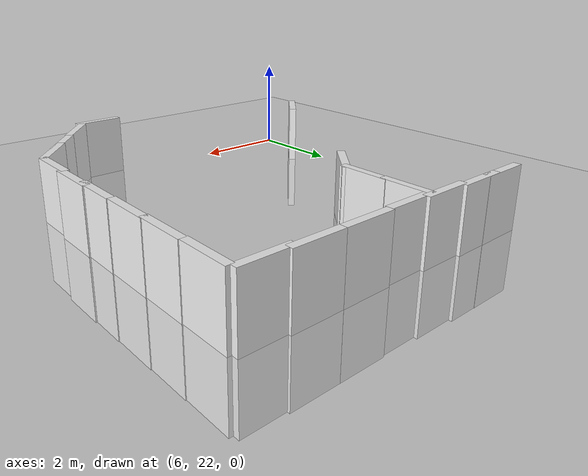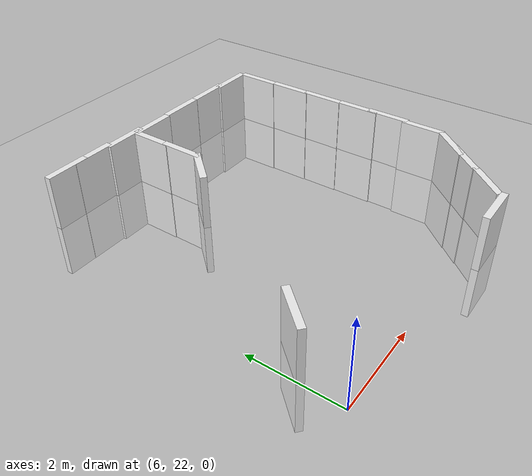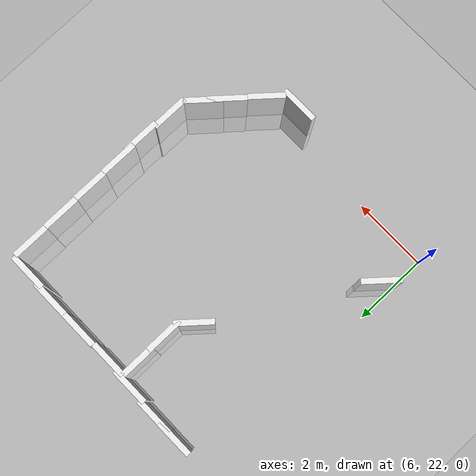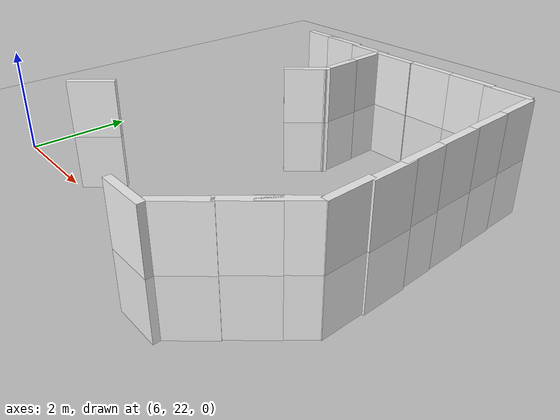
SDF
<sdf version="1.6">
 <world name="default">
  <model name="ground_plane">
   <static>1</static>
   <link name="link">
    <collision name="collision">
     <geometry><plane><normal>0 0 1</normal><size>100 100</size></plane></geometry>
     <surface><friction><ode><mu>100</mu><mu2>50</mu2></ode></friction></surface>
    </collision>
    <visual name="visual">
     <cast_shadows>0</cast_shadows>
     <geometry><plane><normal>0 0 1</normal><size>100 100</size></plane></geometry>
     <material>
      <script><uri>file://media/materials/scripts/gazebo.material</uri><name>Gazebo/Grey</name></script>
     </material>
    </visual>
   </link>
  </model>
  <model name="wall_right_13_clone_clone_9_clone_2_clone_0">
   <link name="Wall_10">
    <inertial>
     <mass>1</mass>
     <inertia><ixx>1</ixx><ixy>0</ixy><ixz>0</ixz><iyy>1</iyy><iyz>0</iyz><izz>1</izz></inertia>
    </inertial>
    <visual name="Wall_10_Visual_0">
     <geometry><box><size>1 0.15 2.5</size></box></geometry>
     <material>
      <script>
       <uri>model://wall/materials/scripts</uri>
       <uri>model://wall/materials/textures</uri>
       <name>wall_white</name>
      </script>
      <shader type="pixel"><normal_map>__default__</normal_map></shader>
      <ambient>1 1 1 1</ambient>
      <diffuse>1 1 1 1</diffuse>
      <specular>0 0 0 1</specular>
      <emissive>0 0 0 1</emissive>
     </material>
     <meta><layer>0</layer></meta>
    </visual>
    <collision name="Wall_10_Collision_0">
     <geometry><box><size>1 0.15 2.5</size></box></geometry>
     <surface>
      <friction>
       <ode><mu>1</mu><mu2>1</mu2><fdir1>0 0 0</fdir1><slip1>0</slip1><slip2>0</slip2></ode>
       <torsional>
        <coefficient>1</coefficient>
        <patch_radius>0</patch_radius>
        <surface_radius>0</surface_radius>
        <use_patch_radius>1</use_patch_radius>
        <ode><slip>0</slip></ode>
       </torsional>
      </friction>
      <bounce><restitution_coefficient>0</restitution_coefficient><threshold>1e+06</threshold></bounce>
      <contact>
       <collide_without_contact>0</collide_without_contact>
       <collide_without_contact_bitmask>1</collide_without_contact_bitmask>
       <collide_bitmask>1</collide_bitmask>
       <ode>
        <soft_cfm>0</soft_cfm>
        <soft_erp>0.2</soft_erp>
        <kp>1e+13</kp>
        <kd>1</kd>
        <max_vel>0.01</max_vel>
        <min_depth>0</min_depth>
       </ode>
       <bullet>
        <split_impulse>1</split_impulse>
        <split_impulse_penetration_threshold>-0.01</split_impulse_penetration_threshold>
        <soft_cfm>0</soft_cfm>
        <soft_erp>0.2</soft_erp>
        <kp>1e+13</kp>
        <kd>1</kd>
       </bullet>
      </contact>
     </surface>
    </collision>
   </link>
   <static>1</static>
   <pose>10.78 21.6301 0 0 -0 0</pose>
  </model>
  <model name="wall_left_07_clone_3_clone_3_clone_clone_11_clone">
   <link name="Wall_10">
    <inertial>
     <mass>1</mass>
     <inertia><ixx>1</ixx><ixy>0</ixy><ixz>0</ixz><iyy>1</iyy><iyz>0</iyz><izz>1</izz></inertia>
    </inertial>
    <visual name="Wall_10_Visual_0">
     <geometry><box><size>1 0.15 2.5</size></box></geometry>
     <material>
      <script>
       <uri>model://wall/materials/scripts</uri>
       <uri>model://wall/materials/textures</uri>
       <name>wall_white</name>
      </script>
      <shader type="pixel"><normal_map>__default__</normal_map></shader>
      <ambient>1 1 1 1</ambient>
      <diffuse>1 1 1 1</diffuse>
      <specular>0 0 0 1</specular>
      <emissive>0 0 0 1</emissive>
     </material>
     <meta><layer>0</layer></meta>
    </visual>
    <collision name="Wall_10_Collision_0">
     <geometry><box><size>1 0.15 2.5</size></box></geometry>
     <surface>
      <friction>
       <ode><mu>1</mu><mu2>1</mu2><fdir1>0 0 0</fdir1><slip1>0</slip1><slip2>0</slip2></ode>
       <torsional>
        <coefficient>1</coefficient>
        <patch_radius>0</patch_radius>
        <surface_radius>0</surface_radius>
        <use_patch_radius>1</use_patch_radius>
        <ode><slip>0</slip></ode>
       </torsional>
      </friction>
      <bounce><restitution_coefficient>0</restitution_coefficient><threshold>1e+06</threshold></bounce>
      <contact>
       <collide_without_contact>0</collide_without_contact>
       <collide_without_contact_bitmask>1</collide_without_contact_bitmask>
       <collide_bitmask>1</collide_bitmask>
       <ode>
        <soft_cfm>0</soft_cfm>
        <soft_erp>0.2</soft_erp>
        <kp>1e+13</kp>
        <kd>1</kd>
        <max_vel>0.01</max_vel>
        <min_depth>0</min_depth>
       </ode>
       <bullet>
        <split_impulse>1</split_impulse>
        <split_impulse_penetration_threshold>-0.01</split_impulse_penetration_threshold>
        <soft_cfm>0</soft_cfm>
        <soft_erp>0.2</soft_erp>
        <kp>1e+13</kp>
        <kd>1</kd>
       </bullet>
      </contact>
     </surface>
    </collision>
   </link>
   <static>1</static>
   <pose>11.5121 22.0724 0 0 -0 0.850469</pose>
  </model>
  <model name="wall_left_07_clone_3_clone_3_clone_clone_11_clone_0">
   <link name="Wall_10">
    <inertial>
     <mass>1</mass>
     <inertia><ixx>1</ixx><ixy>0</ixy><ixz>0</ixz><iyy>1</iyy><iyz>0</iyz><izz>1</izz></inertia>
    </inertial>
    <visual name="Wall_10_Visual_0">
     <geometry><box><size>1 0.15 2.5</size></box></geometry>
     <material>
      <script>
       <uri>model://wall/materials/scripts</uri>
       <uri>model://wall/materials/textures</uri>
       <name>wall_white</name>
      </script>
      <shader type="pixel"><normal_map>__default__</normal_map></shader>
      <ambient>1 1 1 1</ambient>
      <diffuse>1 1 1 1</diffuse>
      <specular>0 0 0 1</specular>
      <emissive>0 0 0 1</emissive>
     </material>
     <meta><layer>0</layer></meta>
    </visual>
    <collision name="Wall_10_Collision_0">
     <geometry><box><size>1 0.15 2.5</size></box></geometry>
     <surface>
      <friction>
       <ode><mu>1</mu><mu2>1</mu2><fdir1>0 0 0</fdir1><slip1>0</slip1><slip2>0</slip2></ode>
       <torsional>
        <coefficient>1</coefficient>
        <patch_radius>0</patch_radius>
        <surface_radius>0</surface_radius>
        <use_patch_radius>1</use_patch_radius>
        <ode><slip>0</slip></ode>
       </torsional>
      </friction>
      <bounce><restitution_coefficient>0</restitution_coefficient><threshold>1e+06</threshold></bounce>
      <contact>
       <collide_without_contact>0</collide_without_contact>
       <collide_without_contact_bitmask>1</collide_without_contact_bitmask>
       <collide_bitmask>1</collide_bitmask>
       <ode>
        <soft_cfm>0</soft_cfm>
        <soft_erp>0.2</soft_erp>
        <kp>1e+13</kp>
        <kd>1</kd>
        <max_vel>0.01</max_vel>
        <min_depth>0</min_depth>
       </ode>
       <bullet>
        <split_impulse>1</split_impulse>
        <split_impulse_penetration_threshold>-0.01</split_impulse_penetration_threshold>
        <soft_cfm>0</soft_cfm>
        <soft_erp>0.2</soft_erp>
        <kp>1e+13</kp>
        <kd>1</kd>
       </bullet>
      </contact>
     </surface>
    </collision>
   </link>
   <static>1</static>
   <pose>12.1164 22.7902 0 0 -0 0.850469</pose>
  </model>
  <model name="wall_left_07_clone_3_clone_3_clone_clone_11_clone_1">
   <link name="Wall_10">
    <inertial>
     <mass>1</mass>
     <inertia><ixx>1</ixx><ixy>0</ixy><ixz>0</ixz><iyy>1</iyy><iyz>0</iyz><izz>1</izz></inertia>
    </inertial>
    <visual name="Wall_10_Visual_0">
     <geometry><box><size>1 0.15 2.5</size></box></geometry>
     <material>
      <script>
       <uri>model://wall/materials/scripts</uri>
       <uri>model://wall/materials/textures</uri>
       <name>wall_white</name>
      </script>
      <shader type="pixel"><normal_map>__default__</normal_map></shader>
      <ambient>1 1 1 1</ambient>
      <diffuse>1 1 1 1</diffuse>
      <specular>0 0 0 1</specular>
      <emissive>0 0 0 1</emissive>
     </material>
     <meta><layer>0</layer></meta>
    </visual>
    <collision name="Wall_10_Collision_0">
     <geometry><box><size>1 0.15 2.5</size></box></geometry>
     <surface>
      <friction>
       <ode><mu>1</mu><mu2>1</mu2><fdir1>0 0 0</fdir1><slip1>0</slip1><slip2>0</slip2></ode>
       <torsional>
        <coefficient>1</coefficient>
        <patch_radius>0</patch_radius>
        <surface_radius>0</surface_radius>
        <use_patch_radius>1</use_patch_radius>
        <ode><slip>0</slip></ode>
       </torsional>
      </friction>
      <bounce><restitution_coefficient>0</restitution_coefficient><threshold>1e+06</threshold></bounce>
      <contact>
       <collide_without_contact>0</collide_without_contact>
       <collide_without_contact_bitmask>1</collide_without_contact_bitmask>
       <collide_bitmask>1</collide_bitmask>
       <ode>
        <soft_cfm>0</soft_cfm>
        <soft_erp>0.2</soft_erp>
        <kp>1e+13</kp>
        <kd>1</kd>
        <max_vel>0.01</max_vel>
        <min_depth>0</min_depth>
       </ode>
       <bullet>
        <split_impulse>1</split_impulse>
        <split_impulse_penetration_threshold>-0.01</split_impulse_penetration_threshold>
        <soft_cfm>0</soft_cfm>
        <soft_erp>0.2</soft_erp>
        <kp>1e+13</kp>
        <kd>1</kd>
       </bullet>
      </contact>
     </surface>
    </collision>
   </link>
   <static>1</static>
   <pose>12.4939 23.2422 0 0 -0 0.850469</pose>
  </model>
  <model name="wall_left_07_clone_3_clone_1_clone_clone_1_clone">
   <link name="Wall_10">
    <inertial>
     <mass>1</mass>
     <inertia><ixx>1</ixx><ixy>0</ixy><ixz>0</ixz><iyy>1</iyy><iyz>0</iyz><izz>1</izz></inertia>
    </inertial>
    <visual name="Wall_10_Visual_0">
     <geometry><box><size>1 0.15 2.5</size></box></geometry>
     <material>
      <script>
       <uri>model://wall/materials/scripts</uri>
       <uri>model://wall/materials/textures</uri>
       <name>wall_white</name>
      </script>
      <shader type="pixel"><normal_map>__default__</normal_map></shader>
      <ambient>1 1 1 1</ambient>
      <diffuse>1 1 1 1</diffuse>
      <specular>0 0 0 1</specular>
      <emissive>0 0 0 1</emissive>
     </material>
     <meta><layer>0</layer></meta>
    </visual>
    <collision name="Wall_10_Collision_0">
     <geometry><box><size>1 0.15 2.5</size></box></geometry>
     <surface>
      <friction>
       <ode><mu>1</mu><mu2>1</mu2><fdir1>0 0 0</fdir1><slip1>0</slip1><slip2>0</slip2></ode>
       <torsional>
        <coefficient>1</coefficient>
        <patch_radius>0</patch_radius>
        <surface_radius>0</surface_radius>
        <use_patch_radius>1</use_patch_radius>
        <ode><slip>0</slip></ode>
       </torsional>
      </friction>
      <bounce><restitution_coefficient>0</restitution_coefficient><threshold>1e+06</threshold></bounce>
      <contact>
       <collide_without_contact>0</collide_without_contact>
       <collide_without_contact_bitmask>1</collide_without_contact_bitmask>
       <collide_bitmask>1</collide_bitmask>
       <ode>
        <soft_cfm>0</soft_cfm>
        <soft_erp>0.2</soft_erp>
        <kp>1e+13</kp>
        <kd>1</kd>
        <max_vel>0.01</max_vel>
        <min_depth>0</min_depth>
       </ode>
       <bullet>
        <split_impulse>1</split_impulse>
        <split_impulse_penetration_threshold>-0.01</split_impulse_penetration_threshold>
        <soft_cfm>0</soft_cfm>
        <soft_erp>0.2</soft_erp>
        <kp>1e+13</kp>
        <kd>1</kd>
       </bullet>
      </contact>
     </surface>
    </collision>
   </link>
   <static>1</static>
   <pose>12.8195 24.0632 0 0 -0 1.57</pose>
  </model>
  <model name="wall_left_07_clone_3_clone_1_clone_clone_1_clone_0">
   <link name="Wall_10">
    <inertial>
     <mass>1</mass>
     <inertia><ixx>1</ixx><ixy>0</ixy><ixz>0</ixz><iyy>1</iyy><iyz>0</iyz><izz>1</izz></inertia>
    </inertial>
    <visual name="Wall_10_Visual_0">
     <geometry><box><size>1 0.15 2.5</size></box></geometry>
     <material>
      <script>
       <uri>model://wall/materials/scripts</uri>
       <uri>model://wall/materials/textures</uri>
       <name>wall_white</name>
      </script>
      <shader type="pixel"><normal_map>__default__</normal_map></shader>
      <ambient>1 1 1 1</ambient>
      <diffuse>1 1 1 1</diffuse>
      <specular>0 0 0 1</specular>
      <emissive>0 0 0 1</emissive>
     </material>
     <meta><layer>0</layer></meta>
    </visual>
    <collision name="Wall_10_Collision_0">
     <geometry><box><size>1 0.15 2.5</size></box></geometry>
     <surface>
      <friction>
       <ode><mu>1</mu><mu2>1</mu2><fdir1>0 0 0</fdir1><slip1>0</slip1><slip2>0</slip2></ode>
       <torsional>
        <coefficient>1</coefficient>
        <patch_radius>0</patch_radius>
        <surface_radius>0</surface_radius>
        <use_patch_radius>1</use_patch_radius>
        <ode><slip>0</slip></ode>
       </torsional>
      </friction>
      <bounce><restitution_coefficient>0</restitution_coefficient><threshold>1e+06</threshold></bounce>
      <contact>
       <collide_without_contact>0</collide_without_contact>
       <collide_without_contact_bitmask>1</collide_without_contact_bitmask>
       <collide_bitmask>1</collide_bitmask>
       <ode>
        <soft_cfm>0</soft_cfm>
        <soft_erp>0.2</soft_erp>
        <kp>1e+13</kp>
        <kd>1</kd>
        <max_vel>0.01</max_vel>
        <min_depth>0</min_depth>
       </ode>
       <bullet>
        <split_impulse>1</split_impulse>
        <split_impulse_penetration_threshold>-0.01</split_impulse_penetration_threshold>
        <soft_cfm>0</soft_cfm>
        <soft_erp>0.2</soft_erp>
        <kp>1e+13</kp>
        <kd>1</kd>
       </bullet>
      </contact>
     </surface>
    </collision>
   </link>
   <static>1</static>
   <pose>12.8667 24.9719 0 0 -0 1.57</pose>
  </model>
  <model name="wall_left_07_clone_3_clone_1_clone_clone_1_clone_1">
   <link name="Wall_10">
    <inertial>
     <mass>1</mass>
     <inertia><ixx>1</ixx><ixy>0</ixy><ixz>0</ixz><iyy>1</iyy><iyz>0</iyz><izz>1</izz></inertia>
    </inertial>
    <visual name="Wall_10_Visual_0">
     <geometry><box><size>1 0.15 2.5</size></box></geometry>
     <material>
      <script>
       <uri>model://wall/materials/scripts</uri>
       <uri>model://wall/materials/textures</uri>
       <name>wall_white</name>
      </script>
      <shader type="pixel"><normal_map>__default__</normal_map></shader>
      <ambient>1 1 1 1</ambient>
      <diffuse>1 1 1 1</diffuse>
      <specular>0 0 0 1</specular>
      <emissive>0 0 0 1</emissive>
     </material>
     <meta><layer>0</layer></meta>
    </visual>
    <collision name="Wall_10_Collision_0">
     <geometry><box><size>1 0.15 2.5</size></box></geometry>
     <surface>
      <friction>
       <ode><mu>1</mu><mu2>1</mu2><fdir1>0 0 0</fdir1><slip1>0</slip1><slip2>0</slip2></ode>
       <torsional>
        <coefficient>1</coefficient>
        <patch_radius>0</patch_radius>
        <surface_radius>0</surface_radius>
        <use_patch_radius>1</use_patch_radius>
        <ode><slip>0</slip></ode>
       </torsional>
      </friction>
      <bounce><restitution_coefficient>0</restitution_coefficient><threshold>1e+06</threshold></bounce>
      <contact>
       <collide_without_contact>0</collide_without_contact>
       <collide_without_contact_bitmask>1</collide_without_contact_bitmask>
       <collide_bitmask>1</collide_bitmask>
       <ode>
        <soft_cfm>0</soft_cfm>
        <soft_erp>0.2</soft_erp>
        <kp>1e+13</kp>
        <kd>1</kd>
        <max_vel>0.01</max_vel>
        <min_depth>0</min_depth>
       </ode>
       <bullet>
        <split_impulse>1</split_impulse>
        <split_impulse_penetration_threshold>-0.01</split_impulse_penetration_threshold>
        <soft_cfm>0</soft_cfm>
        <soft_erp>0.2</soft_erp>
        <kp>1e+13</kp>
        <kd>1</kd>
       </bullet>
      </contact>
     </surface>
    </collision>
   </link>
   <static>1</static>
   <pose>12.8395 25.7416 0 0 -0 1.57</pose>
  </model>
  <model name="wall_left_07_clone_3_clone_1_clone_clone_1_clone_2">
   <link name="Wall_10">
    <inertial>
     <mass>1</mass>
     <inertia><ixx>1</ixx><ixy>0</ixy><ixz>0</ixz><iyy>1</iyy><iyz>0</iyz><izz>1</izz></inertia>
    </inertial>
    <visual name="Wall_10_Visual_0">
     <geometry><box><size>1 0.15 2.5</size></box></geometry>
     <material>
      <script>
       <uri>model://wall/materials/scripts</uri>
       <uri>model://wall/materials/textures</uri>
       <name>wall_white</name>
      </script>
      <shader type="pixel"><normal_map>__default__</normal_map></shader>
      <ambient>1 1 1 1</ambient>
      <diffuse>1 1 1 1</diffuse>
      <specular>0 0 0 1</specular>
      <emissive>0 0 0 1</emissive>
     </material>
     <meta><layer>0</layer></meta>
    </visual>
    <collision name="Wall_10_Collision_0">
     <geometry><box><size>1 0.15 2.5</size></box></geometry>
     <surface>
      <friction>
       <ode><mu>1</mu><mu2>1</mu2><fdir1>0 0 0</fdir1><slip1>0</slip1><slip2>0</slip2></ode>
       <torsional>
        <coefficient>1</coefficient>
        <patch_radius>0</patch_radius>
        <surface_radius>0</surface_radius>
        <use_patch_radius>1</use_patch_radius>
        <ode><slip>0</slip></ode>
       </torsional>
      </friction>
      <bounce><restitution_coefficient>0</restitution_coefficient><threshold>1e+06</threshold></bounce>
      <contact>
       <collide_without_contact>0</collide_without_contact>
       <collide_without_contact_bitmask>1</collide_without_contact_bitmask>
       <collide_bitmask>1</collide_bitmask>
       <ode>
        <soft_cfm>0</soft_cfm>
        <soft_erp>0.2</soft_erp>
        <kp>1e+13</kp>
        <kd>1</kd>
        <max_vel>0.01</max_vel>
        <min_depth>0</min_depth>
       </ode>
       <bullet>
        <split_impulse>1</split_impulse>
        <split_impulse_penetration_threshold>-0.01</split_impulse_penetration_threshold>
        <soft_cfm>0</soft_cfm>
        <soft_erp>0.2</soft_erp>
        <kp>1e+13</kp>
        <kd>1</kd>
       </bullet>
      </contact>
     </surface>
    </collision>
   </link>
   <static>1</static>
   <pose>12.8242 26.7275 0 0 -0 1.57</pose>
  </model>
  <model name="wall_left_07_clone_3_clone_1_clone_clone_1_clone_6">
   <link name="Wall_10">
    <inertial>
     <mass>1</mass>
     <inertia><ixx>1</ixx><ixy>0</ixy><ixz>0</ixz><iyy>1</iyy><iyz>0</iyz><izz>1</izz></inertia>
    </inertial>
    <visual name="Wall_10_Visual_0">
     <geometry><box><size>1 0.15 2.5</size></box></geometry>
     <material>
      <script>
       <uri>model://wall/materials/scripts</uri>
       <uri>model://wall/materials/textures</uri>
       <name>wall_white</name>
      </script>
      <shader type="pixel"><normal_map>__default__</normal_map></shader>
      <ambient>1 1 1 1</ambient>
      <diffuse>1 1 1 1</diffuse>
      <specular>0 0 0 1</specular>
      <emissive>0 0 0 1</emissive>
     </material>
     <meta><layer>0</layer></meta>
    </visual>
    <collision name="Wall_10_Collision_0">
     <geometry><box><size>1 0.15 2.5</size></box></geometry>
     <surface>
      <friction>
       <ode><mu>1</mu><mu2>1</mu2><fdir1>0 0 0</fdir1><slip1>0</slip1><slip2>0</slip2></ode>
       <torsional>
        <coefficient>1</coefficient>
        <patch_radius>0</patch_radius>
        <surface_radius>0</surface_radius>
        <use_patch_radius>1</use_patch_radius>
        <ode><slip>0</slip></ode>
       </torsional>
      </friction>
      <bounce><restitution_coefficient>0</restitution_coefficient><threshold>1e+06</threshold></bounce>
      <contact>
       <collide_without_contact>0</collide_without_contact>
       <collide_without_contact_bitmask>1</collide_without_contact_bitmask>
       <collide_bitmask>1</collide_bitmask>
       <ode>
        <soft_cfm>0</soft_cfm>
        <soft_erp>0.2</soft_erp>
        <kp>1e+13</kp>
        <kd>1</kd>
        <max_vel>0.01</max_vel>
        <min_depth>0</min_depth>
       </ode>
       <bullet>
        <split_impulse>1</split_impulse>
        <split_impulse_penetration_threshold>-0.01</split_impulse_penetration_threshold>
        <soft_cfm>0</soft_cfm>
        <soft_erp>0.2</soft_erp>
        <kp>1e+13</kp>
        <kd>1</kd>
       </bullet>
      </contact>
     </surface>
    </collision>
   </link>
   <static>1</static>
   <pose>12.8096 27.651 0 0 -0 1.57</pose>
  </model>
  <model name="wall_left_07_clone_3_clone_1_clone_clone_1_clone_7">
   <link name="Wall_10">
    <inertial>
     <mass>1</mass>
     <inertia><ixx>1</ixx><ixy>0</ixy><ixz>0</ixz><iyy>1</iyy><iyz>0</iyz><izz>1</izz></inertia>
    </inertial>
    <visual name="Wall_10_Visual_0">
     <geometry><box><size>1 0.15 2.5</size></box></geometry>
     <material>
      <script>
       <uri>model://wall/materials/scripts</uri>
       <uri>model://wall/materials/textures</uri>
       <name>wall_white</name>
      </script>
      <shader type="pixel"><normal_map>__default__</normal_map></shader>
      <ambient>1 1 1 1</ambient>
      <diffuse>1 1 1 1</diffuse>
      <specular>0 0 0 1</specular>
      <emissive>0 0 0 1</emissive>
     </material>
     <meta><layer>0</layer></meta>
    </visual>
    <collision name="Wall_10_Collision_0">
     <geometry><box><size>1 0.15 2.5</size></box></geometry>
     <surface>
      <friction>
       <ode><mu>1</mu><mu2>1</mu2><fdir1>0 0 0</fdir1><slip1>0</slip1><slip2>0</slip2></ode>
       <torsional>
        <coefficient>1</coefficient>
        <patch_radius>0</patch_radius>
        <surface_radius>0</surface_radius>
        <use_patch_radius>1</use_patch_radius>
        <ode><slip>0</slip></ode>
       </torsional>
      </friction>
      <bounce><restitution_coefficient>0</restitution_coefficient><threshold>1e+06</threshold></bounce>
      <contact>
       <collide_without_contact>0</collide_without_contact>
       <collide_without_contact_bitmask>1</collide_without_contact_bitmask>
       <collide_bitmask>1</collide_bitmask>
       <ode>
        <soft_cfm>0</soft_cfm>
        <soft_erp>0.2</soft_erp>
        <kp>1e+13</kp>
        <kd>1</kd>
        <max_vel>0.01</max_vel>
        <min_depth>0</min_depth>
       </ode>
       <bullet>
        <split_impulse>1</split_impulse>
        <split_impulse_penetration_threshold>-0.01</split_impulse_penetration_threshold>
        <soft_cfm>0</soft_cfm>
        <soft_erp>0.2</soft_erp>
        <kp>1e+13</kp>
        <kd>1</kd>
       </bullet>
      </contact>
     </surface>
    </collision>
   </link>
   <static>1</static>
   <pose>12.7943 28.6362 0 0 -0 1.57</pose>
  </model>
  <model name="wall_right_13_clone_clone_9_clone_0_clone">
   <link name="Wall_10">
    <inertial>
     <mass>1</mass>
     <inertia><ixx>1</ixx><ixy>0</ixy><ixz>0</ixz><iyy>1</iyy><iyz>0</iyz><izz>1</izz></inertia>
    </inertial>
    <visual name="Wall_10_Visual_0">
     <geometry><box><size>1 0.15 2.5</size></box></geometry>
     <material>
      <script>
       <uri>model://wall/materials/scripts</uri>
       <uri>model://wall/materials/textures</uri>
       <name>wall_white</name>
      </script>
      <shader type="pixel"><normal_map>__default__</normal_map></shader>
      <ambient>1 1 1 1</ambient>
      <diffuse>1 1 1 1</diffuse>
      <specular>0 0 0 1</specular>
      <emissive>0 0 0 1</emissive>
     </material>
     <meta><layer>0</layer></meta>
    </visual>
    <collision name="Wall_10_Collision_0">
     <geometry><box><size>1 0.15 2.5</size></box></geometry>
     <surface>
      <friction>
       <ode><mu>1</mu><mu2>1</mu2><fdir1>0 0 0</fdir1><slip1>0</slip1><slip2>0</slip2></ode>
       <torsional>
        <coefficient>1</coefficient>
        <patch_radius>0</patch_radius>
        <surface_radius>0</surface_radius>
        <use_patch_radius>1</use_patch_radius>
        <ode><slip>0</slip></ode>
       </torsional>
      </friction>
      <bounce><restitution_coefficient>0</restitution_coefficient><threshold>1e+06</threshold></bounce>
      <contact>
       <collide_without_contact>0</collide_without_contact>
       <collide_without_contact_bitmask>1</collide_without_contact_bitmask>
       <collide_bitmask>1</collide_bitmask>
       <ode>
        <soft_cfm>0</soft_cfm>
        <soft_erp>0.2</soft_erp>
        <kp>1e+13</kp>
        <kd>1</kd>
        <max_vel>0.01</max_vel>
        <min_depth>0</min_depth>
       </ode>
       <bullet>
        <split_impulse>1</split_impulse>
        <split_impulse_penetration_threshold>-0.01</split_impulse_penetration_threshold>
        <soft_cfm>0</soft_cfm>
        <soft_erp>0.2</soft_erp>
        <kp>1e+13</kp>
        <kd>1</kd>
       </bullet>
      </contact>
     </surface>
    </collision>
   </link>
   <static>1</static>
   <pose>12.2942 29.1784 0 0 -0 0</pose>
  </model>
  <model name="wall_right_13_clone_clone_9_clone_0_clone_0">
   <link name="Wall_10">
    <inertial>
     <mass>1</mass>
     <inertia><ixx>1</ixx><ixy>0</ixy><ixz>0</ixz><iyy>1</iyy><iyz>0</iyz><izz>1</izz></inertia>
    </inertial>
    <visual name="Wall_10_Visual_0">
     <geometry><box><size>1 0.15 2.5</size></box></geometry>
     <material>
      <script>
       <uri>model://wall/materials/scripts</uri>
       <uri>model://wall/materials/textures</uri>
       <name>wall_white</name>
      </script>
      <shader type="pixel"><normal_map>__default__</normal_map></shader>
      <ambient>1 1 1 1</ambient>
      <diffuse>1 1 1 1</diffuse>
      <specular>0 0 0 1</specular>
      <emissive>0 0 0 1</emissive>
     </material>
     <meta><layer>0</layer></meta>
    </visual>
    <collision name="Wall_10_Collision_0">
     <geometry><box><size>1 0.15 2.5</size></box></geometry>
     <surface>
      <friction>
       <ode><mu>1</mu><mu2>1</mu2><fdir1>0 0 0</fdir1><slip1>0</slip1><slip2>0</slip2></ode>
       <torsional>
        <coefficient>1</coefficient>
        <patch_radius>0</patch_radius>
        <surface_radius>0</surface_radius>
        <use_patch_radius>1</use_patch_radius>
        <ode><slip>0</slip></ode>
       </torsional>
      </friction>
      <bounce><restitution_coefficient>0</restitution_coefficient><threshold>1e+06</threshold></bounce>
      <contact>
       <collide_without_contact>0</collide_without_contact>
       <collide_without_contact_bitmask>1</collide_without_contact_bitmask>
       <collide_bitmask>1</collide_bitmask>
       <ode>
        <soft_cfm>0</soft_cfm>
        <soft_erp>0.2</soft_erp>
        <kp>1e+13</kp>
        <kd>1</kd>
        <max_vel>0.01</max_vel>
        <min_depth>0</min_depth>
       </ode>
       <bullet>
        <split_impulse>1</split_impulse>
        <split_impulse_penetration_threshold>-0.01</split_impulse_penetration_threshold>
        <soft_cfm>0</soft_cfm>
        <soft_erp>0.2</soft_erp>
        <kp>1e+13</kp>
        <kd>1</kd>
       </bullet>
      </contact>
     </surface>
    </collision>
   </link>
   <static>1</static>
   <pose>11.4475 29.2287 0 0 -0 0</pose>
  </model>
  <model name="wall_right_13_clone_clone_9_clone_0_clone_1">
   <link name="Wall_10">
    <inertial>
     <mass>1</mass>
     <inertia><ixx>1</ixx><ixy>0</ixy><ixz>0</ixz><iyy>1</iyy><iyz>0</iyz><izz>1</izz></inertia>
    </inertial>
    <visual name="Wall_10_Visual_0">
     <geometry><box><size>1 0.15 2.5</size></box></geometry>
     <material>
      <script>
       <uri>model://wall/materials/scripts</uri>
       <uri>model://wall/materials/textures</uri>
       <name>wall_white</name>
      </script>
      <shader type="pixel"><normal_map>__default__</normal_map></shader>
      <ambient>1 1 1 1</ambient>
      <diffuse>1 1 1 1</diffuse>
      <specular>0 0 0 1</specular>
      <emissive>0 0 0 1</emissive>
     </material>
     <meta><layer>0</layer></meta>
    </visual>
    <collision name="Wall_10_Collision_0">
     <geometry><box><size>1 0.15 2.5</size></box></geometry>
     <surface>
      <friction>
       <ode><mu>1</mu><mu2>1</mu2><fdir1>0 0 0</fdir1><slip1>0</slip1><slip2>0</slip2></ode>
       <torsional>
        <coefficient>1</coefficient>
        <patch_radius>0</patch_radius>
        <surface_radius>0</surface_radius>
        <use_patch_radius>1</use_patch_radius>
        <ode><slip>0</slip></ode>
       </torsional>
      </friction>
      <bounce><restitution_coefficient>0</restitution_coefficient><threshold>1e+06</threshold></bounce>
      <contact>
       <collide_without_contact>0</collide_without_contact>
       <collide_without_contact_bitmask>1</collide_without_contact_bitmask>
       <collide_bitmask>1</collide_bitmask>
       <ode>
        <soft_cfm>0</soft_cfm>
        <soft_erp>0.2</soft_erp>
        <kp>1e+13</kp>
        <kd>1</kd>
        <max_vel>0.01</max_vel>
        <min_depth>0</min_depth>
       </ode>
       <bullet>
        <split_impulse>1</split_impulse>
        <split_impulse_penetration_threshold>-0.01</split_impulse_penetration_threshold>
        <soft_cfm>0</soft_cfm>
        <soft_erp>0.2</soft_erp>
        <kp>1e+13</kp>
        <kd>1</kd>
       </bullet>
      </contact>
     </surface>
    </collision>
   </link>
   <static>1</static>
   <pose>10.447 29.2299 0 0 -0 0</pose>
  </model>
  <model name="wall_right_13_clone_clone_9_clone_0_clone_2">
   <link name="Wall_10">
    <inertial>
     <mass>1</mass>
     <inertia><ixx>1</ixx><ixy>0</ixy><ixz>0</ixz><iyy>1</iyy><iyz>0</iyz><izz>1</izz></inertia>
    </inertial>
    <visual name="Wall_10_Visual_0">
     <geometry><box><size>1 0.15 2.5</size></box></geometry>
     <material>
      <script>
       <uri>model://wall/materials/scripts</uri>
       <uri>model://wall/materials/textures</uri>
       <name>wall_white</name>
      </script>
      <shader type="pixel"><normal_map>__default__</normal_map></shader>
      <ambient>1 1 1 1</ambient>
      <diffuse>1 1 1 1</diffuse>
      <specular>0 0 0 1</specular>
      <emissive>0 0 0 1</emissive>
     </material>
     <meta><layer>0</layer></meta>
    </visual>
    <collision name="Wall_10_Collision_0">
     <geometry><box><size>1 0.15 2.5</size></box></geometry>
     <surface>
      <friction>
       <ode><mu>1</mu><mu2>1</mu2><fdir1>0 0 0</fdir1><slip1>0</slip1><slip2>0</slip2></ode>
       <torsional>
        <coefficient>1</coefficient>
        <patch_radius>0</patch_radius>
        <surface_radius>0</surface_radius>
        <use_patch_radius>1</use_patch_radius>
        <ode><slip>0</slip></ode>
       </torsional>
      </friction>
      <bounce><restitution_coefficient>0</restitution_coefficient><threshold>1e+06</threshold></bounce>
      <contact>
       <collide_without_contact>0</collide_without_contact>
       <collide_without_contact_bitmask>1</collide_without_contact_bitmask>
       <collide_bitmask>1</collide_bitmask>
       <ode>
        <soft_cfm>0</soft_cfm>
        <soft_erp>0.2</soft_erp>
        <kp>1e+13</kp>
        <kd>1</kd>
        <max_vel>0.01</max_vel>
        <min_depth>0</min_depth>
       </ode>
       <bullet>
        <split_impulse>1</split_impulse>
        <split_impulse_penetration_threshold>-0.01</split_impulse_penetration_threshold>
        <soft_cfm>0</soft_cfm>
        <soft_erp>0.2</soft_erp>
        <kp>1e+13</kp>
        <kd>1</kd>
       </bullet>
      </contact>
     </surface>
    </collision>
   </link>
   <static>1</static>
   <pose>9.44579 29.2013 0 0 -0 0</pose>
  </model>
  <model name="wall_right_13_clone_clone_9_clone_0_clone_3">
   <link name="Wall_10">
    <inertial>
     <mass>1</mass>
     <inertia><ixx>1</ixx><ixy>0</ixy><ixz>0</ixz><iyy>1</iyy><iyz>0</iyz><izz>1</izz></inertia>
    </inertial>
    <visual name="Wall_10_Visual_0">
     <geometry><box><size>1 0.15 2.5</size></box></geometry>
     <material>
      <script>
       <uri>model://wall/materials/scripts</uri>
       <uri>model://wall/materials/textures</uri>
       <name>wall_white</name>
      </script>
      <shader type="pixel"><normal_map>__default__</normal_map></shader>
      <ambient>1 1 1 1</ambient>
      <diffuse>1 1 1 1</diffuse>
      <specular>0 0 0 1</specular>
      <emissive>0 0 0 1</emissive>
     </material>
     <meta><layer>0</layer></meta>
    </visual>
    <collision name="Wall_10_Collision_0">
     <geometry><box><size>1 0.15 2.5</size></box></geometry>
     <surface>
      <friction>
       <ode><mu>1</mu><mu2>1</mu2><fdir1>0 0 0</fdir1><slip1>0</slip1><slip2>0</slip2></ode>
       <torsional>
        <coefficient>1</coefficient>
        <patch_radius>0</patch_radius>
        <surface_radius>0</surface_radius>
        <use_patch_radius>1</use_patch_radius>
        <ode><slip>0</slip></ode>
       </torsional>
      </friction>
      <bounce><restitution_coefficient>0</restitution_coefficient><threshold>1e+06</threshold></bounce>
      <contact>
       <collide_without_contact>0</collide_without_contact>
       <collide_without_contact_bitmask>1</collide_without_contact_bitmask>
       <collide_bitmask>1</collide_bitmask>
       <ode>
        <soft_cfm>0</soft_cfm>
        <soft_erp>0.2</soft_erp>
        <kp>1e+13</kp>
        <kd>1</kd>
        <max_vel>0.01</max_vel>
        <min_depth>0</min_depth>
       </ode>
       <bullet>
        <split_impulse>1</split_impulse>
        <split_impulse_penetration_threshold>-0.01</split_impulse_penetration_threshold>
        <soft_cfm>0</soft_cfm>
        <soft_erp>0.2</soft_erp>
        <kp>1e+13</kp>
        <kd>1</kd>
       </bullet>
      </contact>
     </surface>
    </collision>
   </link>
   <static>1</static>
   <pose>8.64287 29.2676 0 0 -0 0</pose>
  </model>
  <model name="wall_right_13_clone_clone_9_clone_0_clone_4">
   <link name="Wall_10">
    <inertial>
     <mass>1</mass>
     <inertia><ixx>1</ixx><ixy>0</ixy><ixz>0</ixz><iyy>1</iyy><iyz>0</iyz><izz>1</izz></inertia>
    </inertial>
    <visual name="Wall_10_Visual_0">
     <geometry><box><size>1 0.15 2.5</size></box></geometry>
     <material>
      <script>
       <uri>model://wall/materials/scripts</uri>
       <uri>model://wall/materials/textures</uri>
       <name>wall_white</name>
      </script>
      <shader type="pixel"><normal_map>__default__</normal_map></shader>
      <ambient>1 1 1 1</ambient>
      <diffuse>1 1 1 1</diffuse>
      <specular>0 0 0 1</specular>
      <emissive>0 0 0 1</emissive>
     </material>
     <meta><layer>0</layer></meta>
    </visual>
    <collision name="Wall_10_Collision_0">
     <geometry><box><size>1 0.15 2.5</size></box></geometry>
     <surface>
      <friction>
       <ode><mu>1</mu><mu2>1</mu2><fdir1>0 0 0</fdir1><slip1>0</slip1><slip2>0</slip2></ode>
       <torsional>
        <coefficient>1</coefficient>
        <patch_radius>0</patch_radius>
        <surface_radius>0</surface_radius>
        <use_patch_radius>1</use_patch_radius>
        <ode><slip>0</slip></ode>
       </torsional>
      </friction>
      <bounce><restitution_coefficient>0</restitution_coefficient><threshold>1e+06</threshold></bounce>
      <contact>
       <collide_without_contact>0</collide_without_contact>
       <collide_without_contact_bitmask>1</collide_without_contact_bitmask>
       <collide_bitmask>1</collide_bitmask>
       <ode>
        <soft_cfm>0</soft_cfm>
        <soft_erp>0.2</soft_erp>
        <kp>1e+13</kp>
        <kd>1</kd>
        <max_vel>0.01</max_vel>
        <min_depth>0</min_depth>
       </ode>
       <bullet>
        <split_impulse>1</split_impulse>
        <split_impulse_penetration_threshold>-0.01</split_impulse_penetration_threshold>
        <soft_cfm>0</soft_cfm>
        <soft_erp>0.2</soft_erp>
        <kp>1e+13</kp>
        <kd>1</kd>
       </bullet>
      </contact>
     </surface>
    </collision>
   </link>
   <static>1</static>
   <pose>7.74712 29.3328 0 0 -0 0</pose>
  </model>
  <model name="wall_right_13_clone_clone_9_clone_0_clone_5">
   <link name="Wall_10">
    <inertial>
     <mass>1</mass>
     <inertia><ixx>1</ixx><ixy>0</ixy><ixz>0</ixz><iyy>1</iyy><iyz>0</iyz><izz>1</izz></inertia>
    </inertial>
    <visual name="Wall_10_Visual_0">
     <geometry><box><size>1 0.15 2.5</size></box></geometry>
     <material>
      <script>
       <uri>model://wall/materials/scripts</uri>
       <uri>model://wall/materials/textures</uri>
       <name>wall_white</name>
      </script>
      <shader type="pixel"><normal_map>__default__</normal_map></shader>
      <ambient>1 1 1 1</ambient>
      <diffuse>1 1 1 1</diffuse>
      <specular>0 0 0 1</specular>
      <emissive>0 0 0 1</emissive>
     </material>
     <meta><layer>0</layer></meta>
    </visual>
    <collision name="Wall_10_Collision_0">
     <geometry><box><size>1 0.15 2.5</size></box></geometry>
     <surface>
      <friction>
       <ode><mu>1</mu><mu2>1</mu2><fdir1>0 0 0</fdir1><slip1>0</slip1><slip2>0</slip2></ode>
       <torsional>
        <coefficient>1</coefficient>
        <patch_radius>0</patch_radius>
        <surface_radius>0</surface_radius>
        <use_patch_radius>1</use_patch_radius>
        <ode><slip>0</slip></ode>
       </torsional>
      </friction>
      <bounce><restitution_coefficient>0</restitution_coefficient><threshold>1e+06</threshold></bounce>
      <contact>
       <collide_without_contact>0</collide_without_contact>
       <collide_without_contact_bitmask>1</collide_without_contact_bitmask>
       <collide_bitmask>1</collide_bitmask>
       <ode>
        <soft_cfm>0</soft_cfm>
        <soft_erp>0.2</soft_erp>
        <kp>1e+13</kp>
        <kd>1</kd>
        <max_vel>0.01</max_vel>
        <min_depth>0</min_depth>
       </ode>
       <bullet>
        <split_impulse>1</split_impulse>
        <split_impulse_penetration_threshold>-0.01</split_impulse_penetration_threshold>
        <soft_cfm>0</soft_cfm>
        <soft_erp>0.2</soft_erp>
        <kp>1e+13</kp>
        <kd>1</kd>
       </bullet>
      </contact>
     </surface>
    </collision>
   </link>
   <static>1</static>
   <pose>7.06743 29.3393 0 0 -0 0</pose>
  </model>
  <model name="wall_left_07_clone_3_clone_1_clone_clone_1_clone_4_clone_6">
   <link name="Wall_10">
    <inertial>
     <mass>1</mass>
     <inertia><ixx>1</ixx><ixy>0</ixy><ixz>0</ixz><iyy>1</iyy><iyz>0</iyz><izz>1</izz></inertia>
    </inertial>
    <visual name="Wall_10_Visual_0">
     <geometry><box><size>1 0.15 2.5</size></box></geometry>
     <material>
      <script>
       <uri>model://wall/materials/scripts</uri>
       <uri>model://wall/materials/textures</uri>
       <name>wall_white</name>
      </script>
      <shader type="pixel"><normal_map>__default__</normal_map></shader>
      <ambient>1 1 1 1</ambient>
      <diffuse>1 1 1 1</diffuse>
      <specular>0 0 0 1</specular>
      <emissive>0 0 0 1</emissive>
     </material>
     <meta><layer>0</layer></meta>
    </visual>
    <collision name="Wall_10_Collision_0">
     <geometry><box><size>1 0.15 2.5</size></box></geometry>
     <surface>
      <friction>
       <ode><mu>1</mu><mu2>1</mu2><fdir1>0 0 0</fdir1><slip1>0</slip1><slip2>0</slip2></ode>
       <torsional>
        <coefficient>1</coefficient>
        <patch_radius>0</patch_radius>
        <surface_radius>0</surface_radius>
        <use_patch_radius>1</use_patch_radius>
        <ode><slip>0</slip></ode>
       </torsional>
      </friction>
      <bounce><restitution_coefficient>0</restitution_coefficient><threshold>1e+06</threshold></bounce>
      <contact>
       <collide_without_contact>0</collide_without_contact>
       <collide_without_contact_bitmask>1</collide_without_contact_bitmask>
       <collide_bitmask>1</collide_bitmask>
       <ode>
        <soft_cfm>0</soft_cfm>
        <soft_erp>0.2</soft_erp>
        <kp>1e+13</kp>
        <kd>1</kd>
        <max_vel>0.01</max_vel>
        <min_depth>0</min_depth>
       </ode>
       <bullet>
        <split_impulse>1</split_impulse>
        <split_impulse_penetration_threshold>-0.01</split_impulse_penetration_threshold>
        <soft_cfm>0</soft_cfm>
        <soft_erp>0.2</soft_erp>
        <kp>1e+13</kp>
        <kd>1</kd>
       </bullet>
      </contact>
     </surface>
    </collision>
   </link>
   <static>1</static>
   <pose>8.94738 28.7632 0 0 -0 1.57</pose>
  </model>
  <model name="wall_left_07_clone_3_clone_1_clone_clone_1_clone_4_clone_7">
   <link name="Wall_10">
    <inertial>
     <mass>1</mass>
     <inertia><ixx>1</ixx><ixy>0</ixy><ixz>0</ixz><iyy>1</iyy><iyz>0</iyz><izz>1</izz></inertia>
    </inertial>
    <visual name="Wall_10_Visual_0">
     <geometry><box><size>1 0.15 2.5</size></box></geometry>
     <material>
      <script>
       <uri>model://wall/materials/scripts</uri>
       <uri>model://wall/materials/textures</uri>
       <name>wall_white</name>
      </script>
      <shader type="pixel"><normal_map>__default__</normal_map></shader>
      <ambient>1 1 1 1</ambient>
      <diffuse>1 1 1 1</diffuse>
      <specular>0 0 0 1</specular>
      <emissive>0 0 0 1</emissive>
     </material>
     <meta><layer>0</layer></meta>
    </visual>
    <collision name="Wall_10_Collision_0">
     <geometry><box><size>1 0.15 2.5</size></box></geometry>
     <surface>
      <friction>
       <ode><mu>1</mu><mu2>1</mu2><fdir1>0 0 0</fdir1><slip1>0</slip1><slip2>0</slip2></ode>
       <torsional>
        <coefficient>1</coefficient>
        <patch_radius>0</patch_radius>
        <surface_radius>0</surface_radius>
        <use_patch_radius>1</use_patch_radius>
        <ode><slip>0</slip></ode>
       </torsional>
      </friction>
      <bounce><restitution_coefficient>0</restitution_coefficient><threshold>1e+06</threshold></bounce>
      <contact>
       <collide_without_contact>0</collide_without_contact>
       <collide_without_contact_bitmask>1</collide_without_contact_bitmask>
       <collide_bitmask>1</collide_bitmask>
       <ode>
        <soft_cfm>0</soft_cfm>
        <soft_erp>0.2</soft_erp>
        <kp>1e+13</kp>
        <kd>1</kd>
        <max_vel>0.01</max_vel>
        <min_depth>0</min_depth>
       </ode>
       <bullet>
        <split_impulse>1</split_impulse>
        <split_impulse_penetration_threshold>-0.01</split_impulse_penetration_threshold>
        <soft_cfm>0</soft_cfm>
        <soft_erp>0.2</soft_erp>
        <kp>1e+13</kp>
        <kd>1</kd>
       </bullet>
      </contact>
     </surface>
    </collision>
   </link>
   <static>1</static>
   <pose>8.96092 27.8844 0 0 -0 1.57</pose>
  </model>
  <model name="wall_left_07_clone_3_clone_3_clone_clone_11_clone_1_clone">
   <link name="Wall_10">
    <inertial>
     <mass>1</mass>
     <inertia><ixx>1</ixx><ixy>0</ixy><ixz>0</ixz><iyy>1</iyy><iyz>0</iyz><izz>1</izz></inertia>
    </inertial>
    <visual name="Wall_10_Visual_0">
     <geometry><box><size>1 0.15 2.5</size></box></geometry>
     <material>
      <script>
       <uri>model://wall/materials/scripts</uri>
       <uri>model://wall/materials/textures</uri>
       <name>wall_white</name>
      </script>
      <shader type="pixel"><normal_map>__default__</normal_map></shader>
      <ambient>1 1 1 1</ambient>
      <diffuse>1 1 1 1</diffuse>
      <specular>0 0 0 1</specular>
      <emissive>0 0 0 1</emissive>
     </material>
     <meta><layer>0</layer></meta>
    </visual>
    <collision name="Wall_10_Collision_0">
     <geometry><box><size>1 0.15 2.5</size></box></geometry>
     <surface>
      <friction>
       <ode><mu>1</mu><mu2>1</mu2><fdir1>0 0 0</fdir1><slip1>0</slip1><slip2>0</slip2></ode>
       <torsional>
        <coefficient>1</coefficient>
        <patch_radius>0</patch_radius>
        <surface_radius>0</surface_radius>
        <use_patch_radius>1</use_patch_radius>
        <ode><slip>0</slip></ode>
       </torsional>
      </friction>
      <bounce><restitution_coefficient>0</restitution_coefficient><threshold>1e+06</threshold></bounce>
      <contact>
       <collide_without_contact>0</collide_without_contact>
       <collide_without_contact_bitmask>1</collide_without_contact_bitmask>
       <collide_bitmask>1</collide_bitmask>
       <ode>
        <soft_cfm>0</soft_cfm>
        <soft_erp>0.2</soft_erp>
        <kp>1e+13</kp>
        <kd>1</kd>
        <max_vel>0.01</max_vel>
        <min_depth>0</min_depth>
       </ode>
       <bullet>
        <split_impulse>1</split_impulse>
        <split_impulse_penetration_threshold>-0.01</split_impulse_penetration_threshold>
        <soft_cfm>0</soft_cfm>
        <soft_erp>0.2</soft_erp>
        <kp>1e+13</kp>
        <kd>1</kd>
       </bullet>
      </contact>
     </surface>
    </collision>
   </link>
   <static>1</static>
   <pose>8.69455 27.1553 0 0 -0 0.850469</pose>
  </model>
  <model name="wall_left_07_clone_3_clone_3_clone_clone_11_clone_1_clone_clone">
   <link name="Wall_10">
    <inertial>
     <mass>1</mass>
     <inertia><ixx>1</ixx><ixy>0</ixy><ixz>0</ixz><iyy>1</iyy><iyz>0</iyz><izz>1</izz></inertia>
    </inertial>
    <visual name="Wall_10_Visual_0">
     <geometry><box><size>1 0.15 2.5</size></box></geometry>
     <material>
      <script>
       <uri>model://wall/materials/scripts</uri>
       <uri>model://wall/materials/textures</uri>
       <name>wall_white</name>
      </script>
      <shader type="pixel"><normal_map>__default__</normal_map></shader>
      <ambient>1 1 1 1</ambient>
      <diffuse>1 1 1 1</diffuse>
      <specular>0 0 0 1</specular>
      <emissive>0 0 0 1</emissive>
     </material>
     <meta><layer>0</layer></meta>
    </visual>
    <collision name="Wall_10_Collision_0">
     <geometry><box><size>1 0.15 2.5</size></box></geometry>
     <surface>
      <friction>
       <ode><mu>1</mu><mu2>1</mu2><fdir1>0 0 0</fdir1><slip1>0</slip1><slip2>0</slip2></ode>
       <torsional>
        <coefficient>1</coefficient>
        <patch_radius>0</patch_radius>
        <surface_radius>0</surface_radius>
        <use_patch_radius>1</use_patch_radius>
        <ode><slip>0</slip></ode>
       </torsional>
      </friction>
      <bounce><restitution_coefficient>0</restitution_coefficient><threshold>1e+06</threshold></bounce>
      <contact>
       <collide_without_contact>0</collide_without_contact>
       <collide_without_contact_bitmask>1</collide_without_contact_bitmask>
       <collide_bitmask>1</collide_bitmask>
       <ode>
        <soft_cfm>0</soft_cfm>
        <soft_erp>0.2</soft_erp>
        <kp>1e+13</kp>
        <kd>1</kd>
        <max_vel>0.01</max_vel>
        <min_depth>0</min_depth>
       </ode>
       <bullet>
        <split_impulse>1</split_impulse>
        <split_impulse_penetration_threshold>-0.01</split_impulse_penetration_threshold>
        <soft_cfm>0</soft_cfm>
        <soft_erp>0.2</soft_erp>
        <kp>1e+13</kp>
        <kd>1</kd>
       </bullet>
      </contact>
     </surface>
    </collision>
   </link>
   <static>1</static>
   <pose>6.34103 23.2609 0 0 -0 0.850469</pose>
  </model>
 </world>
</sdf>
